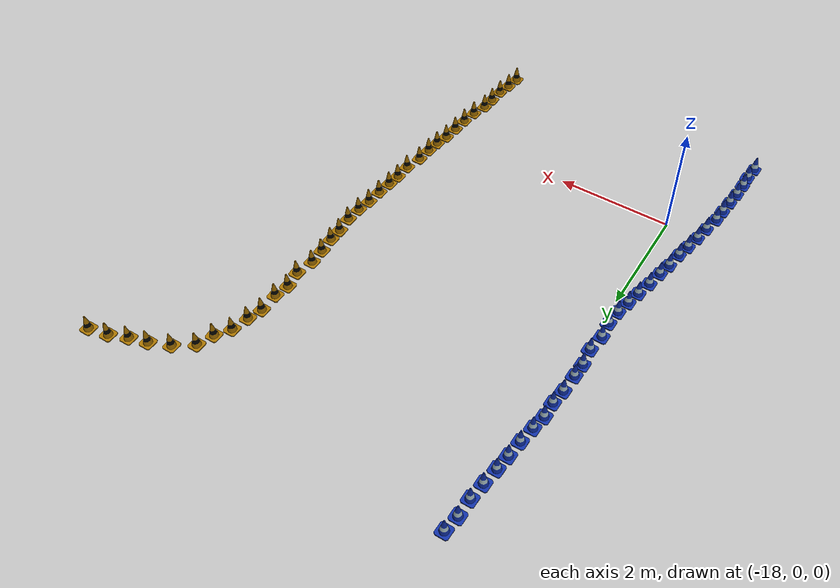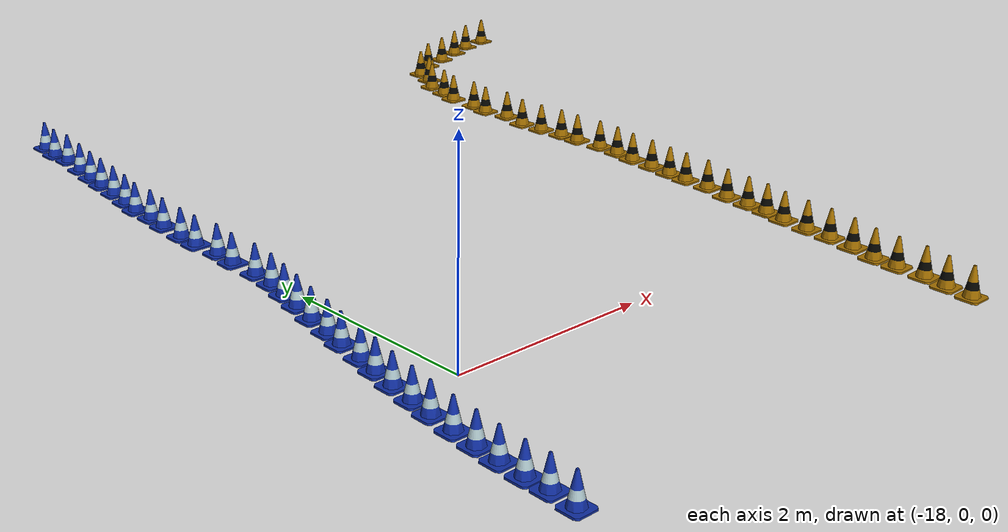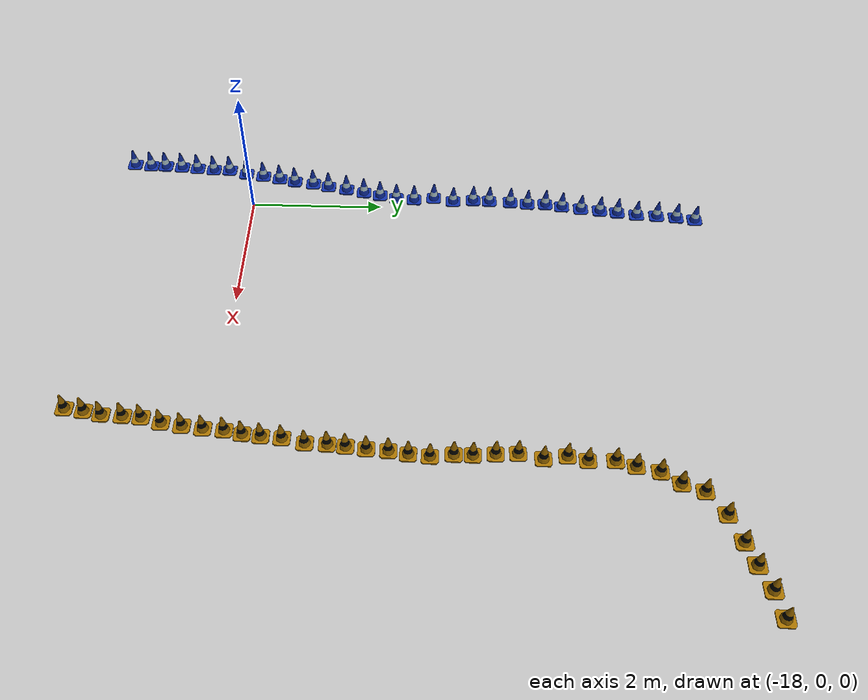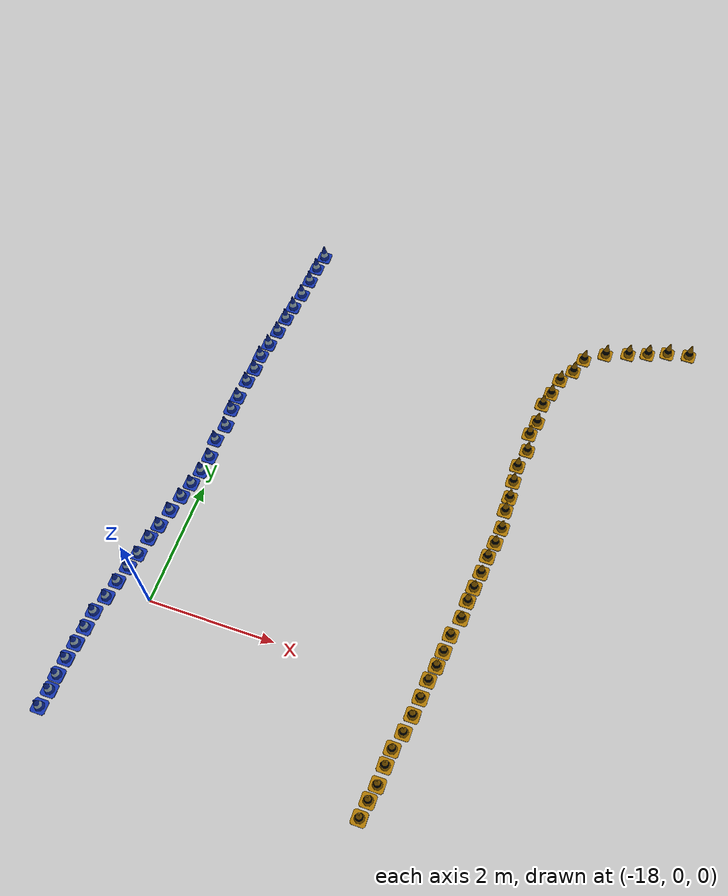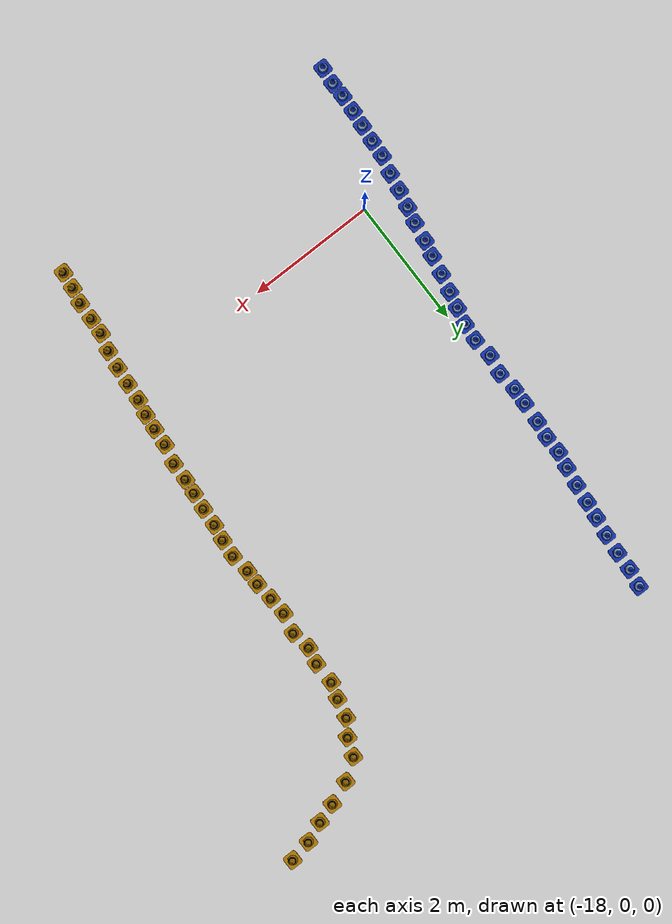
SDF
<sdf version="1.6">
 <model name="small_track">
  <link name="link_0_clone_0_clone">
   <pose>-12.2686 6.61784 0.070966 -0.001555 0.00019 -5.2e-05</pose>
   <visual name="visual">
    <geometry><mesh><uri>model://eufs_description/meshes/cone_yellow.dae</uri></mesh></geometry>
    <material><shader type="pixel"/></material>
   </visual>
  </link>
  <link name="link_0_clone_0_clone_clone_clone_212">
   <pose>-13.9347 -1.97214 0.083534 0.001019 -0.000437 -0.000128</pose>
   <visual name="visual">
    <geometry><mesh><uri>model://eufs_description/meshes/cone_yellow.dae</uri></mesh></geometry>
    <material><shader type="pixel"/></material>
   </visual>
  </link>
  <link name="link_0_clone_0_clone_clone_clone_213">
   <pose>-13.9019 -1.71091 0.083534 0.001019 -0.000437 -0.000128</pose>
   <visual name="visual">
    <geometry><mesh><uri>model://eufs_description/meshes/cone_yellow.dae</uri></mesh></geometry>
    <material><shader type="pixel"/></material>
   </visual>
  </link>
  <link name="link_0_clone_0_clone_clone_clone_214">
   <pose>-13.8518 -1.46623 0.083534 0.001019 -0.000437 -0.000128</pose>
   <visual name="visual">
    <geometry><mesh><uri>model://eufs_description/meshes/cone_yellow.dae</uri></mesh></geometry>
    <material><shader type="pixel"/></material>
   </visual>
  </link>
  <link name="link_0_clone_0_clone_clone_clone_215">
   <pose>-13.8398 -1.18133 0.083534 0.001019 -0.000437 -0.000128</pose>
   <visual name="visual">
    <geometry><mesh><uri>model://eufs_description/meshes/cone_yellow.dae</uri></mesh></geometry>
    <material><shader type="pixel"/></material>
   </visual>
  </link>
  <link name="link_0_clone_0_clone_clone_clone_216">
   <pose>-13.8231 -0.930942 0.083534 0.001019 -0.000437 -0.000128</pose>
   <visual name="visual">
    <geometry><mesh><uri>model://eufs_description/meshes/cone_yellow.dae</uri></mesh></geometry>
    <material><shader type="pixel"/></material>
   </visual>
  </link>
  <link name="link_0_clone_0_clone_clone_clone_217">
   <pose>-13.7493 -0.65911 0.083534 0.001019 -0.000437 -0.000128</pose>
   <visual name="visual">
    <geometry><mesh><uri>model://eufs_description/meshes/cone_yellow.dae</uri></mesh></geometry>
    <material><shader type="pixel"/></material>
   </visual>
  </link>
  <link name="link_0_clone_0_clone_clone_clone_218">
   <pose>-13.7082 -0.379605 0.083534 0.001019 -0.000437 -0.000128</pose>
   <visual name="visual">
    <geometry><mesh><uri>model://eufs_description/meshes/cone_yellow.dae</uri></mesh></geometry>
    <material><shader type="pixel"/></material>
   </visual>
  </link>
  <link name="link_0_clone_0_clone_clone_clone_219">
   <pose>-13.6585 0.179861 0.083534 0.001019 -0.000437 -0.000128</pose>
   <visual name="visual">
    <geometry><mesh><uri>model://eufs_description/meshes/cone_yellow.dae</uri></mesh></geometry>
    <material><shader type="pixel"/></material>
   </visual>
  </link>
  <link name="link_0_clone_0_clone_clone_clone_220">
   <pose>-13.6096 0.419109 0.083534 0.001019 -0.000437 -0.000128</pose>
   <visual name="visual">
    <geometry><mesh><uri>model://eufs_description/meshes/cone_yellow.dae</uri></mesh></geometry>
    <material><shader type="pixel"/></material>
   </visual>
  </link>
  <link name="link_0_clone_0_clone_clone_clone_221">
   <pose>-13.5835 0.664273 0.083534 0.001019 -0.000437 -0.000128</pose>
   <visual name="visual">
    <geometry><mesh><uri>model://eufs_description/meshes/cone_yellow.dae</uri></mesh></geometry>
    <material><shader type="pixel"/></material>
   </visual>
  </link>
  <link name="link_0_clone_0_clone_clone_clone_222">
   <pose>-13.5624 0.939287 0.083534 0.001019 -0.000437 -0.000128</pose>
   <visual name="visual">
    <geometry><mesh><uri>model://eufs_description/meshes/cone_yellow.dae</uri></mesh></geometry>
    <material><shader type="pixel"/></material>
   </visual>
  </link>
  <link name="link_0_clone_0_clone_clone_clone_223">
   <pose>-13.4938 1.24038 0.083534 0.001019 -0.000437 -0.000128</pose>
   <visual name="visual">
    <geometry><mesh><uri>model://eufs_description/meshes/cone_yellow.dae</uri></mesh></geometry>
    <material><shader type="pixel"/></material>
   </visual>
  </link>
  <link name="link_0_clone_0_clone_clone_clone_224">
   <pose>-13.4863 1.5297 0.083534 0.001019 -0.000437 -0.000128</pose>
   <visual name="visual">
    <geometry><mesh><uri>model://eufs_description/meshes/cone_yellow.dae</uri></mesh></geometry>
    <material><shader type="pixel"/></material>
   </visual>
  </link>
  <link name="link_0_clone_0_clone_clone_clone_225">
   <pose>-13.4611 1.76625 0.083534 0.001019 -0.000437 -0.000128</pose>
   <visual name="visual">
    <geometry><mesh><uri>model://eufs_description/meshes/cone_yellow.dae</uri></mesh></geometry>
    <material><shader type="pixel"/></material>
   </visual>
  </link>
  <link name="link_0_clone_0_clone_clone_clone_226">
   <pose>-13.4306 2.03306 0.083534 0.001019 -0.000437 -0.000128</pose>
   <visual name="visual">
    <geometry><mesh><uri>model://eufs_description/meshes/cone_yellow.dae</uri></mesh></geometry>
    <material><shader type="pixel"/></material>
   </visual>
  </link>
  <link name="link_0_clone_0_clone_clone_clone_227">
   <pose>-13.4138 2.3163 0.083534 0.001019 -0.000437 -0.000128</pose>
   <visual name="visual">
    <geometry><mesh><uri>model://eufs_description/meshes/cone_yellow.dae</uri></mesh></geometry>
    <material><shader type="pixel"/></material>
   </visual>
  </link>
  <link name="link_0_clone_0_clone_clone_clone_228">
   <pose>-13.3725 2.56987 0.083534 0.001019 -0.000437 -0.000128</pose>
   <visual name="visual">
    <geometry><mesh><uri>model://eufs_description/meshes/cone_yellow.dae</uri></mesh></geometry>
    <material><shader type="pixel"/></material>
   </visual>
  </link>
  <link name="link_0_clone_0_clone_clone_clone_229">
   <pose>-13.3834 3.14789 0.083534 0.001019 -0.000437 -0.000128</pose>
   <visual name="visual">
    <geometry><mesh><uri>model://eufs_description/meshes/cone_yellow.dae</uri></mesh></geometry>
    <material><shader type="pixel"/></material>
   </visual>
  </link>
  <link name="link_0_clone_0_clone_clone_clone_230">
   <pose>-13.3813 3.39017 0.083534 0.001019 -0.000437 -0.000128</pose>
   <visual name="visual">
    <geometry><mesh><uri>model://eufs_description/meshes/cone_yellow.dae</uri></mesh></geometry>
    <material><shader type="pixel"/></material>
   </visual>
  </link>
  <link name="link_0_clone_0_clone_clone_clone_231">
   <pose>-13.4068 3.67869 0.083534 0.001019 -0.000437 -0.000128</pose>
   <visual name="visual">
    <geometry><mesh><uri>model://eufs_description/meshes/cone_yellow.dae</uri></mesh></geometry>
    <material><shader type="pixel"/></material>
   </visual>
  </link>
  <link name="link_0_clone_0_clone_clone_clone_232">
   <pose>-13.4221 3.96552 0.083534 0.001019 -0.000437 -0.000128</pose>
   <visual name="visual">
    <geometry><mesh><uri>model://eufs_description/meshes/cone_yellow.dae</uri></mesh></geometry>
    <material><shader type="pixel"/></material>
   </visual>
  </link>
  <link name="link_0_clone_0_clone_clone_clone_233">
   <pose>-13.354 4.2823 0.083534 0.001019 -0.000437 -0.000128</pose>
   <visual name="visual">
    <geometry><mesh><uri>model://eufs_description/meshes/cone_yellow.dae</uri></mesh></geometry>
    <material><shader type="pixel"/></material>
   </visual>
  </link>
  <link name="link_0_clone_0_clone_clone_clone_234">
   <pose>-13.403 4.5886 0.083534 0.001019 -0.000437 -0.000128</pose>
   <visual name="visual">
    <geometry><mesh><uri>model://eufs_description/meshes/cone_yellow.dae</uri></mesh></geometry>
    <material><shader type="pixel"/></material>
   </visual>
  </link>
  <link name="link_0_clone_0_clone_clone_clone_235">
   <pose>-13.3545 5.19288 0.083534 0.001019 -0.000437 -0.000128</pose>
   <visual name="visual">
    <geometry><mesh><uri>model://eufs_description/meshes/cone_yellow.dae</uri></mesh></geometry>
    <material><shader type="pixel"/></material>
   </visual>
  </link>
  <link name="link_0_clone_0_clone_clone_clone_236">
   <pose>-13.2778 5.44347 0.083534 0.001019 -0.000437 -0.000128</pose>
   <visual name="visual">
    <geometry><mesh><uri>model://eufs_description/meshes/cone_yellow.dae</uri></mesh></geometry>
    <material><shader type="pixel"/></material>
   </visual>
  </link>
  <link name="link_0_clone_0_clone_clone_clone_237">
   <pose>-13.2096 5.74031 0.083534 0.001019 -0.000437 -0.000128</pose>
   <visual name="visual">
    <geometry><mesh><uri>model://eufs_description/meshes/cone_yellow.dae</uri></mesh></geometry>
    <material><shader type="pixel"/></material>
   </visual>
  </link>
  <link name="link_0_clone_0_clone_clone_clone_238">
   <pose>-13.0474 5.97979 0.083534 0.001019 -0.000437 -0.000128</pose>
   <visual name="visual">
    <geometry><mesh><uri>model://eufs_description/meshes/cone_yellow.dae</uri></mesh></geometry>
    <material><shader type="pixel"/></material>
   </visual>
  </link>
  <link name="link_0_clone_0_clone_clone_clone_239">
   <pose>-12.9406 6.25773 0.083534 0.001019 -0.000437 -0.000128</pose>
   <visual name="visual">
    <geometry><mesh><uri>model://eufs_description/meshes/cone_yellow.dae</uri></mesh></geometry>
    <material><shader type="pixel"/></material>
   </visual>
  </link>
  <link name="link_0_clone_0_clone_clone_clone_240">
   <pose>-12.6263 6.47768 0.083534 0.001019 -0.000437 -0.000128</pose>
   <visual name="visual">
    <geometry><mesh><uri>model://eufs_description/meshes/cone_yellow.dae</uri></mesh></geometry>
    <material><shader type="pixel"/></material>
   </visual>
  </link>
  <link name="link_0_clone_0_clone_clone_clone_241">
   <pose>-11.9629 6.71579 0.083534 0.001019 -0.000437 -0.000128</pose>
   <visual name="visual">
    <geometry><mesh><uri>model://eufs_description/meshes/cone_yellow.dae</uri></mesh></geometry>
    <material><shader type="pixel"/></material>
   </visual>
  </link>
  <link name="link_0_clone_0_clone_clone_clone_242">
   <pose>-11.6526 6.83892 0.083534 0.001019 -0.000437 -0.000128</pose>
   <visual name="visual">
    <geometry><mesh><uri>model://eufs_description/meshes/cone_yellow.dae</uri></mesh></geometry>
    <material><shader type="pixel"/></material>
   </visual>
  </link>
  <link name="link_0_clone_0_clone_clone_clone_243">
   <pose>-11.3056 6.90957 0.083534 0.001019 -0.000437 -0.000128</pose>
   <visual name="visual">
    <geometry><mesh><uri>model://eufs_description/meshes/cone_yellow.dae</uri></mesh></geometry>
    <material><shader type="pixel"/></material>
   </visual>
  </link>
  <link name="link_0_clone_56">
   <pose>-18.6872 -0.45783 0.079001 0 -0 0</pose>
   <visual name="visual">
    <geometry><mesh><uri>model://eufs_description/meshes/cone_blue.dae</uri></mesh></geometry>
    <material><shader type="pixel"/></material>
   </visual>
  </link>
  <link name="link_0_clone_57">
   <pose>-13.6807 -0.101053 0.079001 0 -0 0</pose>
   <visual name="visual">
    <geometry><mesh><uri>model://eufs_description/meshes/cone_yellow.dae</uri></mesh></geometry>
    <material><shader type="pixel"/></material>
   </visual>
  </link>
  <link name="link_0_clone_58">
   <pose>-18.1384 2.83132 0.079001 0 -0 0</pose>
   <visual name="visual">
    <geometry><mesh><uri>model://eufs_description/meshes/cone_blue.dae</uri></mesh></geometry>
    <material><shader type="pixel"/></material>
   </visual>
  </link>
  <link name="link_0_clone_59">
   <pose>-13.3484 2.84491 0.079001 0 -0 0</pose>
   <visual name="visual">
    <geometry><mesh><uri>model://eufs_description/meshes/cone_yellow.dae</uri></mesh></geometry>
    <material><shader type="pixel"/></material>
   </visual>
  </link>
  <link name="link_0_clone_60">
   <pose>-17.8432 6.27091 0.079001 0 -0 0</pose>
   <visual name="visual">
    <geometry><mesh><uri>model://eufs_description/meshes/cone_blue.dae</uri></mesh></geometry>
    <material><shader type="pixel"/></material>
   </visual>
  </link>
  <link name="link_0_clone_61">
   <pose>-13.3484 4.84491 0.079001 0 -0 0</pose>
   <visual name="visual">
    <geometry><mesh><uri>model://eufs_description/meshes/cone_yellow.dae</uri></mesh></geometry>
    <material><shader type="pixel"/></material>
   </visual>
  </link>
  <link name="link_0_clone_62_clone_330">
   <pose>-18.7919 -2.01214 0.063291 -0.001555 0.00019 -5.2e-05</pose>
   <visual name="visual">
    <geometry><mesh><uri>model://eufs_description/meshes/cone_blue.dae</uri></mesh></geometry>
    <material><shader type="pixel"/></material>
   </visual>
  </link>
  <link name="link_0_clone_62_clone_331">
   <pose>-18.7669 -1.74535 0.063291 -0.001555 0.00019 -5.2e-05</pose>
   <visual name="visual">
    <geometry><mesh><uri>model://eufs_description/meshes/cone_blue.dae</uri></mesh></geometry>
    <material><shader type="pixel"/></material>
   </visual>
  </link>
  <link name="link_0_clone_62_clone_332">
   <pose>-18.7702 -1.51089 0.063291 -0.001555 0.00019 -5.2e-05</pose>
   <visual name="visual">
    <geometry><mesh><uri>model://eufs_description/meshes/cone_blue.dae</uri></mesh></geometry>
    <material><shader type="pixel"/></material>
   </visual>
  </link>
  <link name="link_0_clone_62_clone_333">
   <pose>-18.7557 -1.24472 0.063291 -0.001555 0.00019 -5.2e-05</pose>
   <visual name="visual">
    <geometry><mesh><uri>model://eufs_description/meshes/cone_blue.dae</uri></mesh></geometry>
    <material><shader type="pixel"/></material>
   </visual>
  </link>
  <link name="link_0_clone_62_clone_334">
   <pose>-18.7299 -0.988129 0.063291 -0.001555 0.00019 -5.2e-05</pose>
   <visual name="visual">
    <geometry><mesh><uri>model://eufs_description/meshes/cone_blue.dae</uri></mesh></geometry>
    <material><shader type="pixel"/></material>
   </visual>
  </link>
  <link name="link_0_clone_62_clone_335">
   <pose>-18.7044 -0.721369 0.063291 -0.001555 0.00019 -5.2e-05</pose>
   <visual name="visual">
    <geometry><mesh><uri>model://eufs_description/meshes/cone_blue.dae</uri></mesh></geometry>
    <material><shader type="pixel"/></material>
   </visual>
  </link>
  <link name="link_0_clone_62_clone_336">
   <pose>-18.6237 -0.181678 0.063291 -0.001555 0.00019 -5.2e-05</pose>
   <visual name="visual">
    <geometry><mesh><uri>model://eufs_description/meshes/cone_blue.dae</uri></mesh></geometry>
    <material><shader type="pixel"/></material>
   </visual>
  </link>
  <link name="link_0_clone_62_clone_337">
   <pose>-18.579 0.096456 0.063291 -0.001555 0.00019 -5.2e-05</pose>
   <visual name="visual">
    <geometry><mesh><uri>model://eufs_description/meshes/cone_blue.dae</uri></mesh></geometry>
    <material><shader type="pixel"/></material>
   </visual>
  </link>
  <link name="link_0_clone_62_clone_338">
   <pose>-18.5231 0.365034 0.063291 -0.001555 0.00019 -5.2e-05</pose>
   <visual name="visual">
    <geometry><mesh><uri>model://eufs_description/meshes/cone_blue.dae</uri></mesh></geometry>
    <material><shader type="pixel"/></material>
   </visual>
  </link>
  <link name="link_0_clone_62_clone_339">
   <pose>-18.4666 0.61324 0.063291 -0.001555 0.00019 -5.2e-05</pose>
   <visual name="visual">
    <geometry><mesh><uri>model://eufs_description/meshes/cone_blue.dae</uri></mesh></geometry>
    <material><shader type="pixel"/></material>
   </visual>
  </link>
  <link name="link_0_clone_62_clone_340">
   <pose>-18.4227 0.911702 0.063291 -0.001555 0.00019 -5.2e-05</pose>
   <visual name="visual">
    <geometry><mesh><uri>model://eufs_description/meshes/cone_blue.dae</uri></mesh></geometry>
    <material><shader type="pixel"/></material>
   </visual>
  </link>
  <link name="link_0_clone_62_clone_341">
   <pose>-18.3662 1.15988 0.063291 -0.001555 0.00019 -5.2e-05</pose>
   <visual name="visual">
    <geometry><mesh><uri>model://eufs_description/meshes/cone_blue.dae</uri></mesh></geometry>
    <material><shader type="pixel"/></material>
   </visual>
  </link>
  <link name="link_0_clone_62_clone_342">
   <pose>-18.3117 1.44871 0.063291 -0.001555 0.00019 -5.2e-05</pose>
   <visual name="visual">
    <geometry><mesh><uri>model://eufs_description/meshes/cone_blue.dae</uri></mesh></geometry>
    <material><shader type="pixel"/></material>
   </visual>
  </link>
  <link name="link_0_clone_62_clone_343">
   <pose>-18.2464 1.72799 0.063291 -0.001555 0.00019 -5.2e-05</pose>
   <visual name="visual">
    <geometry><mesh><uri>model://eufs_description/meshes/cone_blue.dae</uri></mesh></geometry>
    <material><shader type="pixel"/></material>
   </visual>
  </link>
  <link name="link_0_clone_62_clone_344">
   <pose>-18.1902 1.98631 0.063291 -0.001555 0.00019 -5.2e-05</pose>
   <visual name="visual">
    <geometry><mesh><uri>model://eufs_description/meshes/cone_blue.dae</uri></mesh></geometry>
    <material><shader type="pixel"/></material>
   </visual>
  </link>
  <link name="link_0_clone_62_clone_345">
   <pose>-18.1341 2.24462 0.063291 -0.001555 0.00019 -5.2e-05</pose>
   <visual name="visual">
    <geometry><mesh><uri>model://eufs_description/meshes/cone_blue.dae</uri></mesh></geometry>
    <material><shader type="pixel"/></material>
   </visual>
  </link>
  <link name="link_0_clone_62_clone_346">
   <pose>-18.1094 2.52149 0.063291 -0.001555 0.00019 -5.2e-05</pose>
   <visual name="visual">
    <geometry><mesh><uri>model://eufs_description/meshes/cone_blue.dae</uri></mesh></geometry>
    <material><shader type="pixel"/></material>
   </visual>
  </link>
  <link name="link_0_clone_62_clone_347">
   <pose>-18.0915 3.13406 0.063291 -0.001555 0.00019 -5.2e-05</pose>
   <visual name="visual">
    <geometry><mesh><uri>model://eufs_description/meshes/cone_blue.dae</uri></mesh></geometry>
    <material><shader type="pixel"/></material>
   </visual>
  </link>
  <link name="link_0_clone_62_clone_348">
   <pose>-18.1223 3.44577 0.063291 -0.001555 0.00019 -5.2e-05</pose>
   <visual name="visual">
    <geometry><mesh><uri>model://eufs_description/meshes/cone_blue.dae</uri></mesh></geometry>
    <material><shader type="pixel"/></material>
   </visual>
  </link>
  <link name="link_0_clone_62_clone_349">
   <pose>-18.1129 3.69945 0.063291 -0.001555 0.00019 -5.2e-05</pose>
   <visual name="visual">
    <geometry><mesh><uri>model://eufs_description/meshes/cone_blue.dae</uri></mesh></geometry>
    <material><shader type="pixel"/></material>
   </visual>
  </link>
  <link name="link_0_clone_62_clone_350">
   <pose>-18.096 4.02595 0.063291 -0.001555 0.00019 -5.2e-05</pose>
   <visual name="visual">
    <geometry><mesh><uri>model://eufs_description/meshes/cone_blue.dae</uri></mesh></geometry>
    <material><shader type="pixel"/></material>
   </visual>
  </link>
  <link name="link_0_clone_62_clone_351">
   <pose>-18.0636 4.29305 0.063291 -0.001555 0.00019 -5.2e-05</pose>
   <visual name="visual">
    <geometry><mesh><uri>model://eufs_description/meshes/cone_blue.dae</uri></mesh></geometry>
    <material><shader type="pixel"/></material>
   </visual>
  </link>
  <link name="link_0_clone_62_clone_352">
   <pose>-18.0679 4.57019 0.063291 -0.001555 0.00019 -5.2e-05</pose>
   <visual name="visual">
    <geometry><mesh><uri>model://eufs_description/meshes/cone_blue.dae</uri></mesh></geometry>
    <material><shader type="pixel"/></material>
   </visual>
  </link>
  <link name="link_0_clone_62_clone_353">
   <pose>-18.0228 4.82602 0.063291 -0.001555 0.00019 -5.2e-05</pose>
   <visual name="visual">
    <geometry><mesh><uri>model://eufs_description/meshes/cone_blue.dae</uri></mesh></geometry>
    <material><shader type="pixel"/></material>
   </visual>
  </link>
  <link name="link_0_clone_62_clone_354">
   <pose>-17.9794 5.11778 0.063291 -0.001555 0.00019 -5.2e-05</pose>
   <visual name="visual">
    <geometry><mesh><uri>model://eufs_description/meshes/cone_blue.dae</uri></mesh></geometry>
    <material><shader type="pixel"/></material>
   </visual>
  </link>
  <link name="link_0_clone_62_clone_355">
   <pose>-17.9486 5.40898 0.063291 -0.001555 0.00019 -5.2e-05</pose>
   <visual name="visual">
    <geometry><mesh><uri>model://eufs_description/meshes/cone_blue.dae</uri></mesh></geometry>
    <material><shader type="pixel"/></material>
   </visual>
  </link>
  <link name="link_0_clone_62_clone_356">
   <pose>-17.9159 5.67604 0.063291 -0.001555 0.00019 -5.2e-05</pose>
   <visual name="visual">
    <geometry><mesh><uri>model://eufs_description/meshes/cone_blue.dae</uri></mesh></geometry>
    <material><shader type="pixel"/></material>
   </visual>
  </link>
  <link name="link_0_clone_62_clone_357">
   <pose>-17.8728 5.96795 0.063291 -0.001555 0.00019 -5.2e-05</pose>
   <visual name="visual">
    <geometry><mesh><uri>model://eufs_description/meshes/cone_blue.dae</uri></mesh></geometry>
    <material><shader type="pixel"/></material>
   </visual>
  </link>
  <link name="link_0_clone_62_clone_358">
   <pose>-17.8332 6.57238 0.063291 -0.001555 0.00019 -5.2e-05</pose>
   <visual name="visual">
    <geometry><mesh><uri>model://eufs_description/meshes/cone_blue.dae</uri></mesh></geometry>
    <material><shader type="pixel"/></material>
   </visual>
  </link>
  <link name="link_0_clone_62_clone_359">
   <pose>-17.7894 6.85202 0.063291 -0.001555 0.00019 -5.2e-05</pose>
   <visual name="visual">
    <geometry><mesh><uri>model://eufs_description/meshes/cone_blue.dae</uri></mesh></geometry>
    <material><shader type="pixel"/></material>
   </visual>
  </link>
  <static>1</static>
 </model>
</sdf>
